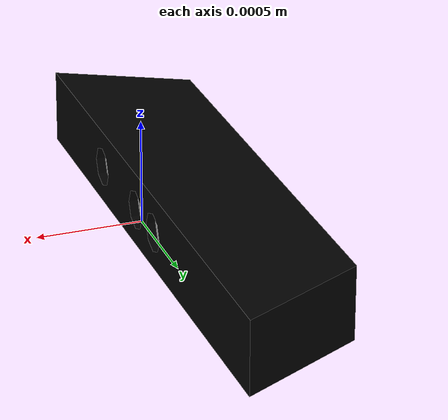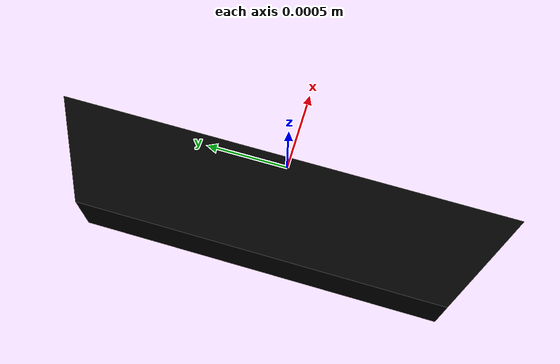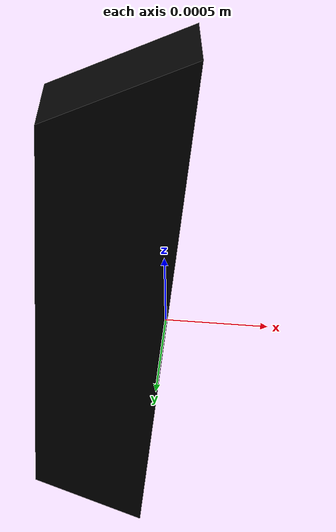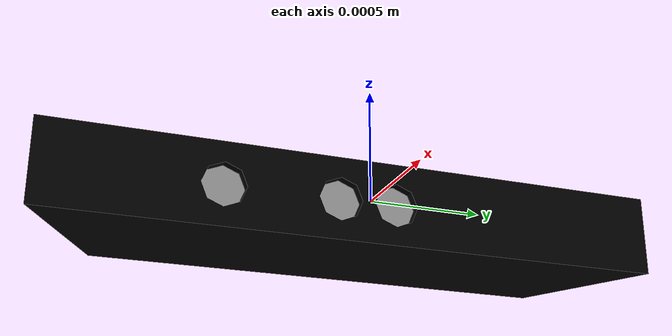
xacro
<?xml version="1.0" ?>
<robot name="localbot" xmlns:xacro="http://ros.org/wiki/xacro">
  <!--  Xacro description of turtlebot robot waffle pi used to play team hunt.-->
  <!--  Miguel Riem Oliveira-->
  <!--  PARI, November 2020-->

  <!--Args are local, properties are global, so we copy the values of the arguments to the properties-->
  <xacro:arg name="name" default="localbot" />
  <xacro:arg name="color" default="Orange" /> <!-- e.g. Red, Orange. Must exist in Gazebo/Colors and be defined in properties.xacro.-->

  <!--Properties are global so they can be viewed from inside the included xacros-->
  <!--  args are used with $(arg arg_name), properties are used as ${property_name}-->
  <xacro:property name="name" value="$(arg name)"/>
  <xacro:property name="color" value="$(arg color)"/>

  <!-- Include other files-->
  <xacro:include filename="$(find hector_xacro_tools)/urdf/inertia_tensors.urdf.xacro" />
  <xacro:include filename="$(find hector_xacro_tools)/urdf/joint_macros.urdf.xacro" />
  <xacro:include filename="$(find localbot_description)/urdf/localbot_kinect_camera.urdf.xacro" />
  <xacro:property name="M_PI" value="3.14159265359"/>

  <xacro:include filename="$(find localbot_description)/urdf/localbot.gazebo.macro.xacro"/>
  <xacro:gazebo_macro color="$(arg color)" laser_visual="false" camera_visual="false" imu_visual="true"/>

  <link name="base_footprint"/>

  <joint name="base_joint" type="fixed">
    <parent link="base_footprint"/>
    <child link="base_link" />
    <origin xyz="0.00 0.00 0.00" rpy="0 0 0"/>
  </joint>

  <link name="base_link">
  </link>

  <xacro:kinect_camera name='kinect' parent="base_link">
    <origin xyz="0.00 0.00 0.00" rpy="0 0.0 0" />
  </xacro:kinect_camera>

</robot>

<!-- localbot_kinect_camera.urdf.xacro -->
<robot xmlns:xacro="http://www.ros.org/wiki/xacro">
    <xacro:include filename="$(find hector_xacro_tools)/urdf/inertia_tensors.urdf.xacro"/>
    <xacro:property name="M_PI" value="3.1415926535897931" />

    <xacro:macro name="kinect_camera_model" params="name parent *origin">
      <joint name="${name}_joint" type="fixed">
        <xacro:insert_block name="origin" />
        <parent link="${parent}"/>
        <child link="${name}_link"/>
      </joint>

      <link name="${name}_link">
        <xacro:inertial_sphere mass="0.01" diameter="0.07" />
        <visual>
          <origin xyz="0 0 0" rpy="0 0 0" />
          <geometry>
            <mesh filename="package://hector_sensors_description/meshes/kinect_camera/kinect_camera_simple.dae"/>
          </geometry>
        </visual>
        <collision>
          <origin xyz="0 0 0" rpy="0 0 0" />
          <geometry>
            <mesh filename="package://hector_sensors_description/meshes/kinect_camera/kinect_camera_simple.stl"/>
          </geometry>
        </collision>
      </link>

      <joint name="${name}_depth_joint" type="fixed">
        <origin xyz="0.0 -0.02 0.0" rpy="0 0 0" />
        <parent link="${name}_link" />
        <child link="${name}_depth_frame"/>
      </joint>

      <link name="${name}_depth_frame"/>

      <joint name="${name}_depth_optical_joint" type="fixed">
        <origin xyz="0 0 0" rpy="${-M_PI/2} 0.0 ${-M_PI/2}" />
        <parent link="${name}_depth_frame" />
        <child link="${name}_depth_optical_frame"/>
      </joint>

      <link name="${name}_depth_optical_frame"/>

      <joint name="${name}_rgb_joint" type="fixed">
        <origin xyz="0.0 -0.0125 0.0" rpy="0 0 0" />
        <parent link="${name}_link" />
        <child link="${name}_rgb_frame"/>
      </joint>

      <link name="${name}_rgb_frame"/>

      <joint name="${name}_rgb_optical_joint" type="fixed">
        <origin xyz="0 0 0" rpy="${-M_PI/2} 0.0 ${-M_PI/2}" />
        <parent link="${name}_rgb_frame" />
        <child link="${name}_rgb_optical_frame"/>
      </joint>

      <link name="${name}_rgb_optical_frame"/>

    </xacro:macro>

    <xacro:macro name="kinect_camera" params="name parent *origin">
      <xacro:kinect_camera_model name="${name}" parent="${parent}">
        <xacro:insert_block name="origin" />
      </xacro:kinect_camera_model>

      <gazebo reference="${name}_depth_frame">
        <sensor type="depth" name="${name}">
          <update_rate>20</update_rate>
          <camera>
            <horizontal_fov>${60 * M_PI/180.0}</horizontal_fov>
            <image>
              <format>B8G8R8</format>
              <width>640</width>
              <height>480</height>
            </image>
            <clip>
              <near>0.10</near>
              <far>8.0</far>
            </clip>
          </camera>
          <plugin name="${name}_camera_controller" filename="libgazebo_ros_openni_kinect.so">
            <imageTopicName>null</imageTopicName>
            <cameraInfoTopicName>null/camera_info</cameraInfoTopicName>
            <depthImageTopicName>${name}/depth/image_raw</depthImageTopicName>
            <depthImageCameraInfoTopicName>${name}/depth/camera_info</depthImageCameraInfoTopicName>
            <pointCloudTopicName>${name}/depth/points</pointCloudTopicName>
            <frameName>${name}_depth_optical_frame</frameName>
          </plugin>
        </sensor>
      </gazebo>

    <gazebo reference="${name}_rgb_frame">
            <sensor type="camera" name="${name}">
                <update_rate>20.0</update_rate>
                <camera>
                    <horizontal_fov>${60.0*pi/180.0}</horizontal_fov>
                    <image>
                        <format>B8G8R8</format>
                        <width>640</width>
                        <height>480</height>
                    </image>
                    <clip>
                        <near>0.10</near>
                        <far>8.0</far>
                    </clip>
                </camera>
                <plugin name="${name}}_rgb_camera_controller" filename="libgazebo_ros_camera.so">
                    <alwaysOn>true</alwaysOn>
                    <updateRate>0</updateRate>
                    <imageTopicName>${name}/rgb/image_raw</imageTopicName>
                    <cameraInfoTopicName>${name}/rgb/camera_info</cameraInfoTopicName>
                    <frameName>${name}_rgb_optical_frame</frameName>
                    <!-- Apparently this is not used-->
                </plugin>
            </sensor>
        </gazebo>
        </xacro:macro>

  </robot>
